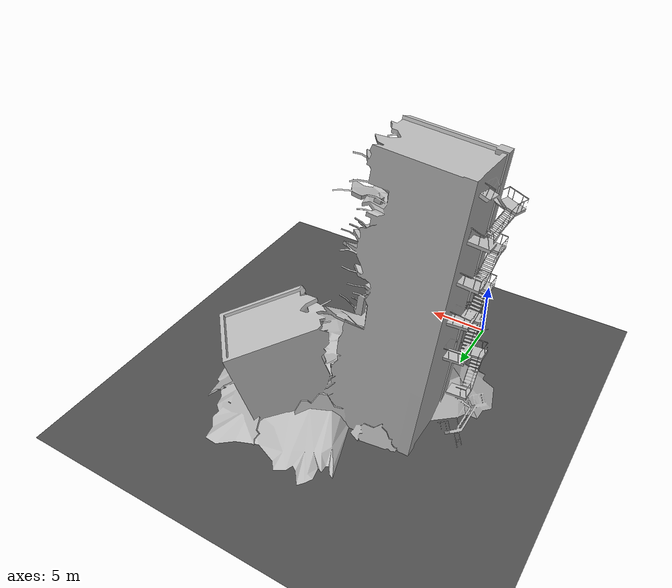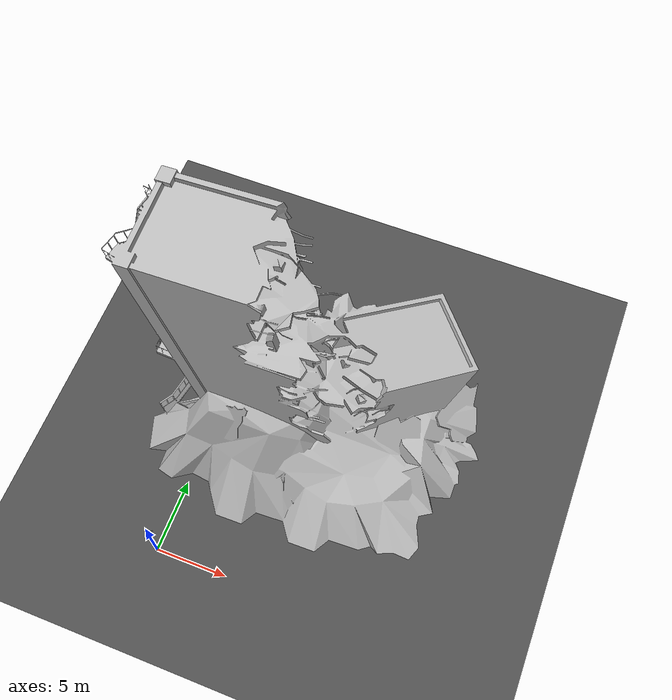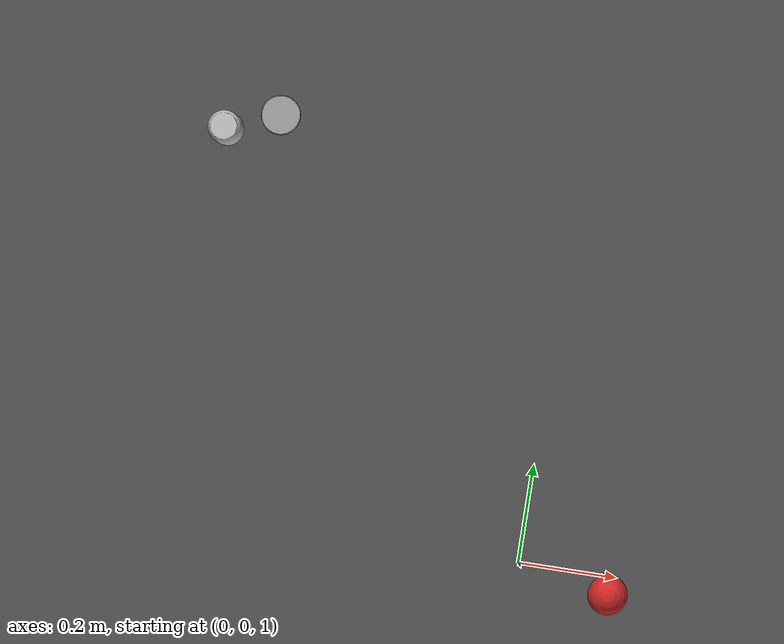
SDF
<sdf version="1.6">
 <world name="default">
  <magnetic_field>6e-06 2.3e-05 -4.2e-05</magnetic_field>
  <atmosphere type="adiabatic"/>
  <physics type="ode">
   <max_contacts>5</max_contacts>
   <ode>
    <solver><type>quick</type><iters>50</iters><precon_iters>0</precon_iters><sor>1.300000</sor></solver>
    <constraints>
     <cfm>0.000000</cfm>
     <erp>0.200000</erp>
     <contact_max_correcting_vel>100.000000</contact_max_correcting_vel>
     <contact_surface_layer>0.001000</contact_surface_layer>
    </constraints>
   </ode>
  </physics>
  <scene><ambient>0.4 0.4 0.4 1</ambient><background>0.7 0.7 1 1</background><shadows>1</shadows></scene>
  <spherical_coordinates>
   <surface_model>EARTH_WGS84</surface_model>
   <latitude_deg>0</latitude_deg>
   <longitude_deg>0</longitude_deg>
   <elevation>0</elevation>
   <heading_deg>0</heading_deg>
  </spherical_coordinates>
  <model name="coke_can">
   <link name="link">
    <inertial>
     <pose>0 0 0.06 0 -0 0</pose>
     <mass>0.39</mass>
     <inertia>
      <ixx>0.00055575</ixx>
      <ixy>0</ixy>
      <ixz>0</ixz>
      <iyy>0.00055575</iyy>
      <iyz>0</iyz>
      <izz>0.0001755</izz>
     </inertia>
    </inertial>
    <collision name="collision">
     <pose>0.003937 0.004724 -0.18 0 -0 0</pose>
     <geometry><mesh><uri>model://coke_can/meshes/coke_can.dae</uri></mesh></geometry>
     <surface>
      <friction><ode><mu>1</mu><mu2>1</mu2></ode></friction>
      <contact><ode><kp>1e+07</kp><kd>1</kd><min_depth>0.001</min_depth><max_vel>0.1</max_vel></ode></contact>
     </surface>
    </collision>
    <visual name="visual">
     <pose>0.003937 0.004724 -0.18 0 -0 0</pose>
     <geometry><mesh><uri>model://coke_can/meshes/coke_can.dae</uri></mesh></geometry>
    </visual>
   </link>
   <pose>-0.716003 0.774219 1 0.002268 -0.042174 -0.247484</pose>
  </model>
  <model name="round_tin_base">
   <link name="link">
    <inertial>
     <pose>0 0 0.014085 0 -0 0</pose>
     <mass>0.0223</mass>
     <inertia>
      <ixx>1.93147e-05</ixx>
      <ixy>0</ixy>
      <ixz>0</ixz>
      <iyy>1.93147e-05</iyy>
      <iyz>0</iyz>
      <izz>3.568e-05</izz>
     </inertia>
    </inertial>
    <collision name="collision_cylinder">
     <pose>0 0 0.001 0 -0 0</pose>
     <geometry><cylinder><radius>0.04</radius><length>0.002</length></cylinder></geometry>
     <surface>
      <contact>
       <poissons_ratio>0.36</poissons_ratio>
       <elastic_modulus>5e+10</elastic_modulus>
       <ode><kp>100000</kp><kd>100</kd><max_vel>100</max_vel><min_depth>0.001</min_depth></ode>
      </contact>
      <friction>
       <torsional>
        <coefficient>1</coefficient>
        <use_patch_radius>0</use_patch_radius>
        <surface_radius>0.01</surface_radius>
       </torsional>
      </friction>
     </surface>
    </collision>
    <visual name="visual_cylinder">
     <pose>0 0 0.001 0 -0 0</pose>
     <geometry><cylinder><radius>0.04</radius><length>0.002</length></cylinder></geometry>
     <material>
      <script><uri>file://media/materials/scripts/gazebo.material</uri><name>Gazebo/Grey</name></script>
     </material>
    </visual>
    <collision name="collision_mesh">
     <pose>0 0 0.001 0 -0 0</pose>
     <geometry><mesh><uri>model://round_tin_base/meshes/round_tin_base.dae</uri></mesh></geometry>
     <surface><contact><ode><max_vel>0.1</max_vel><min_depth>0.0001</min_depth></ode></contact></surface>
    </collision>
    <visual name="visual_mesh">
     <pose>0 0 0.001 0 -0 0</pose>
     <geometry><mesh><uri>model://round_tin_base/meshes/round_tin_base.dae</uri></mesh></geometry>
     <material>
      <script><uri>file://media/materials/scripts/gazebo.material</uri><name>Gazebo/Grey</name></script>
     </material>
    </visual>
   </link>
   <pose>-0.615778 0.81859 1.0 0.0 0.0 0.0</pose>
  </model>
  <model name="rubble">
   <link name="link">
    <visual name="visual">
     <geometry>
      <mesh><uri>model://collapsed_industrial/meshes/collapsed_industrial.dae</uri><scale>1 1 1</scale></mesh>
     </geometry>
    </visual>
   </link>
   <pose>6 12.5 0 0 0 0</pose>
   <static>true</static>
  </model>
  <model name="ground">
   <link name="link">
    <visual name="visual">
     <pose>0 0 -0.16 0 -0 0</pose>
     <geometry><plane><normal>0 0 1</normal><size>100 100</size></plane></geometry>
     <material>
      <script><uri>file://media/materials/scripts/gazebo.material</uri><name>Gazebo/DarkGrey</name></script>
     </material>
    </visual>
    <collision name="collision">
     <pose>0 0 -0.16 0 -0 0</pose>
     <geometry><plane><normal>0 0 1</normal><size>100 100</size></plane></geometry>
     <surface><contact><ode><max_vel>0.1</max_vel><min_depth>0.001</min_depth></ode></contact></surface>
    </collision>
   </link>
   <collision name="collision">
    <pose>0 0 -0.16 0 -0 0</pose>
    <geometry><plane><normal>0 0 1</normal><size>100 100</size></plane></geometry>
    <surface><contact><ode><max_vel>0.1</max_vel><min_depth>0.001</min_depth></ode></contact></surface>
   </collision>
   <pose>0 0 -0.01 0 0 0</pose>
   <static>true</static>
  </model>
  <model name="cricket_ball">
   <link name="link">
    <pose>0 0 0.0375 0 -0 0</pose>
    <inertial>
     <mass>0.1467</mass>
     <inertia>
      <ixx>8.25187e-05</ixx>
      <ixy>0</ixy>
      <ixz>0</ixz>
      <iyy>8.25187e-05</iyy>
      <iyz>0</iyz>
      <izz>8.25187e-05</izz>
     </inertia>
    </inertial>
    <collision name="collision">
     <geometry><sphere><radius>0.0375</radius></sphere></geometry>
     <surface>
      <contact>
       <poissons_ratio>0.347</poissons_ratio>
       <elastic_modulus>8.8e+09</elastic_modulus>
       <ode><kp>100000</kp><kd>100</kd><max_vel>100</max_vel><min_depth>0.001</min_depth></ode>
      </contact>
      <friction>
       <torsional>
        <coefficient>1</coefficient>
        <use_patch_radius>0</use_patch_radius>
        <surface_radius>0.01</surface_radius>
       </torsional>
      </friction>
     </surface>
    </collision>
    <visual name="visual">
     <geometry><sphere><radius>0.0375</radius></sphere></geometry>
     <material>
      <script><uri>file://media/materials/scripts/gazebo.material</uri><name>Gazebo/Red</name></script>
     </material>
    </visual>
    <velocity_decay><linear>0</linear><angular>0.005</angular></velocity_decay>
   </link>
   <pose>0.15003 -5.5e-05 1.8 0.003644 -0.00082 0.000309</pose>
  </model>
  <light name="user_spot_light_0" type="spot">
   <pose>-0.614545 -0.753038 2.0714 0.392405 -0 0</pose>
   <diffuse>0.7 0.5 0.2 1</diffuse>
   <specular>0.1 0.1 0.1 1</specular>
   <direction>0 0 -1</direction>
   <attenuation>
    <range>20</range>
    <constant>0.5</constant>
    <linear>0.01</linear>
    <quadratic>0.001</quadratic>
   </attenuation>
   <cast_shadows>0</cast_shadows>
   <spot><inner_angle>0.6</inner_angle><outer_angle>1</outer_angle><falloff>1</falloff></spot>
  </light>
  <light name="user_directional_light_0" type="directional">
   <pose>0 0 3 0 -0 0</pose>
   <diffuse>0.9 0.85 0.8 1</diffuse>
   <specular>0.1 0.1 0.1 1</specular>
   <direction>0.1 0.1 -0.9</direction>
   <attenuation>
    <range>20</range>
    <constant>0.5</constant>
    <linear>0.01</linear>
    <quadratic>0.001</quadratic>
   </attenuation>
  </light>
 </world>
</sdf>
